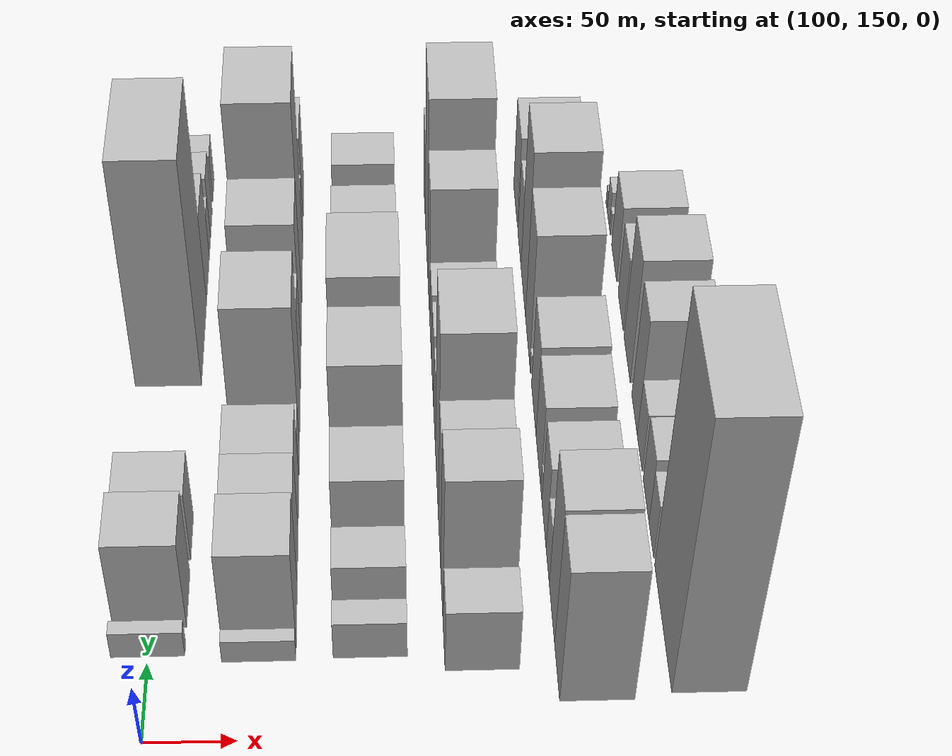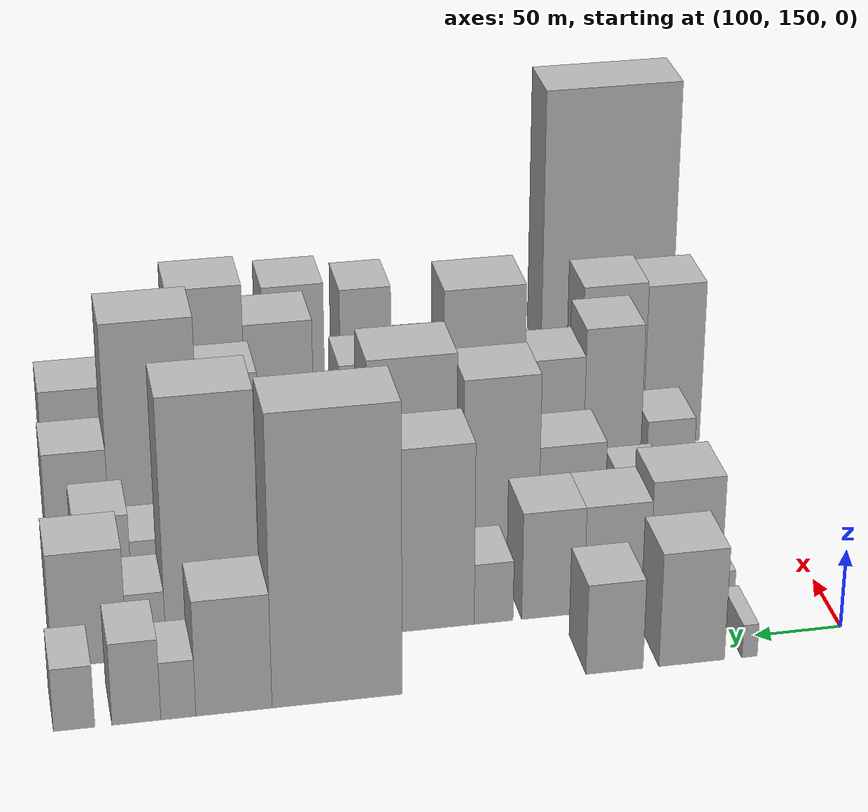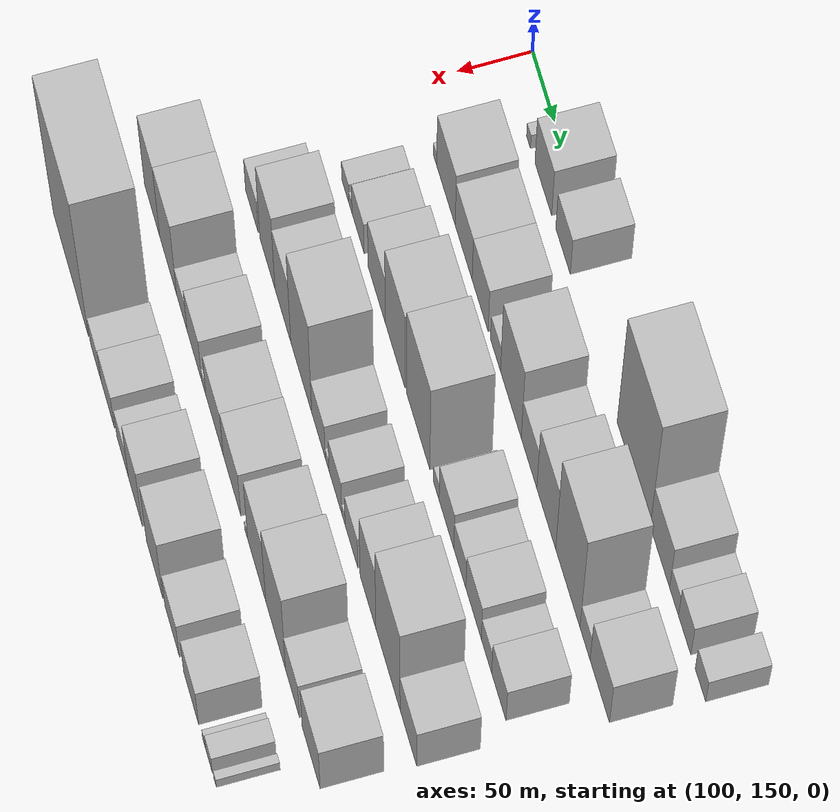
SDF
<sdf version="1.6">
 <world name="default">
  <model name="building_30">
   <static>1</static>
   <pose>100.0000 208.9905 0 0.000000 0.000000 0.000000</pose>
   <link name="link">
    <pose>0 0 10.50 0 0 0</pose>
    <collision name="collision"><geometry><box><size>40.0000 8.7514 21.0000</size></box></geometry></collision>
    <visual name="visual">
     <cast_shadows>0</cast_shadows>
     <geometry><box><size>40.0000 8.7514 21.0000</size></box></geometry>
     <material>
      <script>
       <uri>model://HANNAS_wall/materials/scripts</uri>
       <uri>model://HANNAS_wall/materials/textures</uri>
       <name>vrc/HANNAS_wall</name>
      </script>
     </material>
    </visual>
   </link>
  </model>
  <model name="building_31">
   <static>1</static>
   <pose>100.0000 241.9794 0 0.000000 0.000000 0.000000</pose>
   <link name="link">
    <pose>0 0 36.00 0 0 0</pose>
    <collision name="collision"><geometry><box><size>40.0000 37.2263 72.0000</size></box></geometry></collision>
    <visual name="visual">
     <cast_shadows>0</cast_shadows>
     <geometry><box><size>40.0000 37.2263 72.0000</size></box></geometry>
     <material>
      <script>
       <uri>model://HANNAS_wall/materials/scripts</uri>
       <uri>model://HANNAS_wall/materials/textures</uri>
       <name>vrc/HANNAS_wall</name>
      </script>
     </material>
    </visual>
   </link>
  </model>
  <model name="building_32">
   <static>1</static>
   <pose>100.0000 285.6427 0 0.000000 0.000000 0.000000</pose>
   <link name="link">
    <pose>0 0 28.50 0 0 0</pose>
    <collision name="collision"><geometry><box><size>40.0000 32.1003 57.0000</size></box></geometry></collision>
    <visual name="visual">
     <cast_shadows>0</cast_shadows>
     <geometry><box><size>40.0000 32.1003 57.0000</size></box></geometry>
     <material>
      <script>
       <uri>model://HANNAS_wall/materials/scripts</uri>
       <uri>model://HANNAS_wall/materials/textures</uri>
       <name>vrc/HANNAS_wall</name>
      </script>
     </material>
    </visual>
   </link>
  </model>
  <model name="building_33">
   <static>1</static>
   <pose>100.0000 439.0972 0 0.000000 0.000000 0.000000</pose>
   <link name="link">
    <pose>0 0 90.00 0 0 0</pose>
    <collision name="collision"><geometry><box><size>40.0000 70.9362 180.0000</size></box></geometry></collision>
    <visual name="visual">
     <cast_shadows>0</cast_shadows>
     <geometry><box><size>40.0000 70.9362 180.0000</size></box></geometry>
     <material>
      <script>
       <uri>model://HANNAS_wall/materials/scripts</uri>
       <uri>model://HANNAS_wall/materials/textures</uri>
       <name>vrc/HANNAS_wall</name>
      </script>
     </material>
    </visual>
   </link>
  </model>
  <model name="building_34">
   <static>1</static>
   <pose>100.0000 495.0541 0 0.000000 0.000000 0.000000</pose>
   <link name="link">
    <pose>0 0 36.00 0 0 0</pose>
    <collision name="collision"><geometry><box><size>40.0000 40.9777 72.0000</size></box></geometry></collision>
    <visual name="visual">
     <cast_shadows>0</cast_shadows>
     <geometry><box><size>40.0000 40.9777 72.0000</size></box></geometry>
     <material>
      <script>
       <uri>model://HANNAS_wall/materials/scripts</uri>
       <uri>model://HANNAS_wall/materials/textures</uri>
       <name>vrc/HANNAS_wall</name>
      </script>
     </material>
    </visual>
   </link>
  </model>
  <model name="building_35">
   <static>1</static>
   <pose>100.0000 524.9111 0 0.000000 0.000000 0.000000</pose>
   <link name="link">
    <pose>0 0 18.00 0 0 0</pose>
    <collision name="collision"><geometry><box><size>40.0000 18.7362 36.0000</size></box></geometry></collision>
    <visual name="visual">
     <cast_shadows>0</cast_shadows>
     <geometry><box><size>40.0000 18.7362 36.0000</size></box></geometry>
     <material>
      <script>
       <uri>model://HANNAS_wall/materials/scripts</uri>
       <uri>model://HANNAS_wall/materials/textures</uri>
       <name>vrc/HANNAS_wall</name>
      </script>
     </material>
    </visual>
   </link>
  </model>
  <model name="building_36">
   <static>1</static>
   <pose>100.0000 547.2872 0 0.000000 0.000000 0.000000</pose>
   <link name="link">
    <pose>0 0 25.50 0 0 0</pose>
    <collision name="collision"><geometry><box><size>40.0000 26.0160 51.0000</size></box></geometry></collision>
    <visual name="visual">
     <cast_shadows>0</cast_shadows>
     <geometry><box><size>40.0000 26.0160 51.0000</size></box></geometry>
     <material>
      <script>
       <uri>model://HANNAS_wall/materials/scripts</uri>
       <uri>model://HANNAS_wall/materials/textures</uri>
       <name>vrc/HANNAS_wall</name>
      </script>
     </material>
    </visual>
   </link>
  </model>
  <model name="building_37">
   <static>1</static>
   <pose>100.0000 580.2507 0 0.000000 0.000000 0.000000</pose>
   <link name="link">
    <pose>0 0 19.50 0 0 0</pose>
    <collision name="collision"><geometry><box><size>40.0000 21.9110 39.0000</size></box></geometry></collision>
    <visual name="visual">
     <cast_shadows>0</cast_shadows>
     <geometry><box><size>40.0000 21.9110 39.0000</size></box></geometry>
     <material>
      <script>
       <uri>model://HANNAS_wall/materials/scripts</uri>
       <uri>model://HANNAS_wall/materials/textures</uri>
       <name>vrc/HANNAS_wall</name>
      </script>
     </material>
    </visual>
   </link>
  </model>
  <model name="building_84">
   <static>1</static>
   <pose>160.0000 204.1823 0 0.000000 0.000000 0.000000</pose>
   <link name="link">
    <pose>0 0 9.00 0 0 0</pose>
    <collision name="collision"><geometry><box><size>40.0000 8.3804 18.0000</size></box></geometry></collision>
    <visual name="visual">
     <cast_shadows>0</cast_shadows>
     <geometry><box><size>40.0000 8.3804 18.0000</size></box></geometry>
     <material>
      <script>
       <uri>model://HANNAS_wall/materials/scripts</uri>
       <uri>model://HANNAS_wall/materials/textures</uri>
       <name>vrc/HANNAS_wall</name>
      </script>
     </material>
    </visual>
   </link>
  </model>
  <model name="building_85">
   <static>1</static>
   <pose>160.0000 229.3633 0 0.000000 0.000000 0.000000</pose>
   <link name="link">
    <pose>0 0 40.50 0 0 0</pose>
    <collision name="collision"><geometry><box><size>40.0000 41.9816 81.0000</size></box></geometry></collision>
    <visual name="visual">
     <cast_shadows>0</cast_shadows>
     <geometry><box><size>40.0000 41.9816 81.0000</size></box></geometry>
     <material>
      <script>
       <uri>model://HANNAS_wall/materials/scripts</uri>
       <uri>model://HANNAS_wall/materials/textures</uri>
       <name>vrc/HANNAS_wall</name>
      </script>
     </material>
    </visual>
   </link>
  </model>
  <model name="building_86">
   <static>1</static>
   <pose>160.0000 269.3965 0 0.000000 0.000000 0.000000</pose>
   <link name="link">
    <pose>0 0 34.50 0 0 0</pose>
    <collision name="collision"><geometry><box><size>40.0000 38.0850 69.0000</size></box></geometry></collision>
    <visual name="visual">
     <cast_shadows>0</cast_shadows>
     <geometry><box><size>40.0000 38.0850 69.0000</size></box></geometry>
     <material>
      <script>
       <uri>model://HANNAS_wall/materials/scripts</uri>
       <uri>model://HANNAS_wall/materials/textures</uri>
       <name>vrc/HANNAS_wall</name>
      </script>
     </material>
    </visual>
   </link>
  </model>
  <model name="building_87">
   <static>1</static>
   <pose>160.0000 306.3958 0 0.000000 0.000000 0.000000</pose>
   <link name="link">
    <pose>0 0 34.50 0 0 0</pose>
    <collision name="collision"><geometry><box><size>40.0000 35.9135 69.0000</size></box></geometry></collision>
    <visual name="visual">
     <cast_shadows>0</cast_shadows>
     <geometry><box><size>40.0000 35.9135 69.0000</size></box></geometry>
     <material>
      <script>
       <uri>model://HANNAS_wall/materials/scripts</uri>
       <uri>model://HANNAS_wall/materials/textures</uri>
       <name>vrc/HANNAS_wall</name>
      </script>
     </material>
    </visual>
   </link>
  </model>
  <model name="building_88">
   <static>1</static>
   <pose>160.0000 340.5164 0 0.000000 0.000000 0.000000</pose>
   <link name="link">
    <pose>0 0 19.50 0 0 0</pose>
    <collision name="collision"><geometry><box><size>40.0000 22.3277 39.0000</size></box></geometry></collision>
    <visual name="visual">
     <cast_shadows>0</cast_shadows>
     <geometry><box><size>40.0000 22.3277 39.0000</size></box></geometry>
     <material>
      <script>
       <uri>model://HANNAS_wall/materials/scripts</uri>
       <uri>model://HANNAS_wall/materials/textures</uri>
       <name>vrc/HANNAS_wall</name>
      </script>
     </material>
    </visual>
   </link>
  </model>
  <model name="building_89">
   <static>1</static>
   <pose>160.0000 374.5953 0 0.000000 0.000000 0.000000</pose>
   <link name="link">
    <pose>0 0 58.50 0 0 0</pose>
    <collision name="collision"><geometry><box><size>40.0000 45.8302 117.0000</size></box></geometry></collision>
    <visual name="visual">
     <cast_shadows>0</cast_shadows>
     <geometry><box><size>40.0000 45.8302 117.0000</size></box></geometry>
     <material>
      <script>
       <uri>model://HANNAS_wall/materials/scripts</uri>
       <uri>model://HANNAS_wall/materials/textures</uri>
       <name>vrc/HANNAS_wall</name>
      </script>
     </material>
    </visual>
   </link>
  </model>
  <model name="building_90">
   <static>1</static>
   <pose>160.0000 414.5548 0 0.000000 0.000000 0.000000</pose>
   <link name="link">
    <pose>0 0 33.00 0 0 0</pose>
    <collision name="collision"><geometry><box><size>40.0000 34.0886 66.0000</size></box></geometry></collision>
    <visual name="visual">
     <cast_shadows>0</cast_shadows>
     <geometry><box><size>40.0000 34.0886 66.0000</size></box></geometry>
     <material>
      <script>
       <uri>model://HANNAS_wall/materials/scripts</uri>
       <uri>model://HANNAS_wall/materials/textures</uri>
       <name>vrc/HANNAS_wall</name>
      </script>
     </material>
    </visual>
   </link>
  </model>
  <model name="building_91">
   <static>1</static>
   <pose>160.0000 452.0418 0 0.000000 0.000000 0.000000</pose>
   <link name="link">
    <pose>0 0 52.50 0 0 0</pose>
    <collision name="collision"><geometry><box><size>40.0000 40.8854 105.0000</size></box></geometry></collision>
    <visual name="visual">
     <cast_shadows>0</cast_shadows>
     <geometry><box><size>40.0000 40.8854 105.0000</size></box></geometry>
     <material>
      <script>
       <uri>model://HANNAS_wall/materials/scripts</uri>
       <uri>model://HANNAS_wall/materials/textures</uri>
       <name>vrc/HANNAS_wall</name>
      </script>
     </material>
    </visual>
   </link>
  </model>
  <model name="building_92">
   <static>1</static>
   <pose>160.0000 498.7131 0 0.000000 0.000000 0.000000</pose>
   <link name="link">
    <pose>0 0 81.00 0 0 0</pose>
    <collision name="collision"><geometry><box><size>40.0000 52.4572 162.0000</size></box></geometry></collision>
    <visual name="visual">
     <cast_shadows>0</cast_shadows>
     <geometry><box><size>40.0000 52.4572 162.0000</size></box></geometry>
     <material>
      <script>
       <uri>model://HANNAS_wall/materials/scripts</uri>
       <uri>model://HANNAS_wall/materials/textures</uri>
       <name>vrc/HANNAS_wall</name>
      </script>
     </material>
    </visual>
   </link>
  </model>
  <model name="building_93">
   <static>1</static>
   <pose>160.0000 535.7705 0 0.000000 0.000000 0.000000</pose>
   <link name="link">
    <pose>0 0 21.00 0 0 0</pose>
    <collision name="collision"><geometry><box><size>40.0000 21.6576 42.0000</size></box></geometry></collision>
    <visual name="visual">
     <cast_shadows>0</cast_shadows>
     <geometry><box><size>40.0000 21.6576 42.0000</size></box></geometry>
     <material>
      <script>
       <uri>model://HANNAS_wall/materials/scripts</uri>
       <uri>model://HANNAS_wall/materials/textures</uri>
       <name>vrc/HANNAS_wall</name>
      </script>
     </material>
    </visual>
   </link>
  </model>
  <model name="building_94">
   <static>1</static>
   <pose>160.0000 567.2086 0 0.000000 0.000000 0.000000</pose>
   <link name="link">
    <pose>0 0 36.00 0 0 0</pose>
    <collision name="collision"><geometry><box><size>40.0000 41.2186 72.0000</size></box></geometry></collision>
    <visual name="visual">
     <cast_shadows>0</cast_shadows>
     <geometry><box><size>40.0000 41.2186 72.0000</size></box></geometry>
     <material>
      <script>
       <uri>model://HANNAS_wall/materials/scripts</uri>
       <uri>model://HANNAS_wall/materials/textures</uri>
       <name>vrc/HANNAS_wall</name>
      </script>
     </material>
    </visual>
   </link>
  </model>
  <model name="building_141">
   <static>1</static>
   <pose>220.0000 209.3620 0 0.000000 0.000000 0.000000</pose>
   <link name="link">
    <pose>0 0 15.00 0 0 0</pose>
    <collision name="collision"><geometry><box><size>40.0000 16.4977 30.0000</size></box></geometry></collision>
    <visual name="visual">
     <cast_shadows>0</cast_shadows>
     <geometry><box><size>40.0000 16.4977 30.0000</size></box></geometry>
     <material>
      <script>
       <uri>model://HANNAS_wall/materials/scripts</uri>
       <uri>model://HANNAS_wall/materials/textures</uri>
       <name>vrc/HANNAS_wall</name>
      </script>
     </material>
    </visual>
   </link>
  </model>
  <model name="building_142">
   <static>1</static>
   <pose>220.0000 221.2172 0 0.000000 0.000000 0.000000</pose>
   <link name="link">
    <pose>0 0 9.00 0 0 0</pose>
    <collision name="collision"><geometry><box><size>40.0000 7.2127 18.0000</size></box></geometry></collision>
    <visual name="visual">
     <cast_shadows>0</cast_shadows>
     <geometry><box><size>40.0000 7.2127 18.0000</size></box></geometry>
     <material>
      <script>
       <uri>model://HANNAS_wall/materials/scripts</uri>
       <uri>model://HANNAS_wall/materials/textures</uri>
       <name>vrc/HANNAS_wall</name>
      </script>
     </material>
    </visual>
   </link>
  </model>
  <model name="building_143">
   <static>1</static>
   <pose>220.0000 238.9055 0 0.000000 0.000000 0.000000</pose>
   <link name="link">
    <pose>0 0 24.00 0 0 0</pose>
    <collision name="collision"><geometry><box><size>40.0000 28.1638 48.0000</size></box></geometry></collision>
    <visual name="visual">
     <cast_shadows>0</cast_shadows>
     <geometry><box><size>40.0000 28.1638 48.0000</size></box></geometry>
     <material>
      <script>
       <uri>model://HANNAS_wall/materials/scripts</uri>
       <uri>model://HANNAS_wall/materials/textures</uri>
       <name>vrc/HANNAS_wall</name>
      </script>
     </material>
    </visual>
   </link>
  </model>
  <model name="building_144">
   <static>1</static>
   <pose>220.0000 281.6469 0 0.000000 0.000000 0.000000</pose>
   <link name="link">
    <pose>0 0 37.50 0 0 0</pose>
    <collision name="collision"><geometry><box><size>40.0000 39.3190 75.0000</size></box></geometry></collision>
    <visual name="visual">
     <cast_shadows>0</cast_shadows>
     <geometry><box><size>40.0000 39.3190 75.0000</size></box></geometry>
     <material>
      <script>
       <uri>model://HANNAS_wall/materials/scripts</uri>
       <uri>model://HANNAS_wall/materials/textures</uri>
       <name>vrc/HANNAS_wall</name>
      </script>
     </material>
    </visual>
   </link>
  </model>
  <model name="building_145">
   <static>1</static>
   <pose>220.0000 323.6219 0 0.000000 0.000000 0.000000</pose>
   <link name="link">
    <pose>0 0 61.50 0 0 0</pose>
    <collision name="collision"><geometry><box><size>40.0000 44.6308 123.0000</size></box></geometry></collision>
    <visual name="visual">
     <cast_shadows>0</cast_shadows>
     <geometry><box><size>40.0000 44.6308 123.0000</size></box></geometry>
     <material>
      <script>
       <uri>model://HANNAS_wall/materials/scripts</uri>
       <uri>model://HANNAS_wall/materials/textures</uri>
       <name>vrc/HANNAS_wall</name>
      </script>
     </material>
    </visual>
   </link>
  </model>
  <model name="building_146">
   <static>1</static>
   <pose>220.0000 375.8786 0 0.000000 0.000000 0.000000</pose>
   <link name="link">
    <pose>0 0 70.50 0 0 0</pose>
    <collision name="collision"><geometry><box><size>40.0000 51.8826 141.0000</size></box></geometry></collision>
    <visual name="visual">
     <cast_shadows>0</cast_shadows>
     <geometry><box><size>40.0000 51.8826 141.0000</size></box></geometry>
     <material>
      <script>
       <uri>model://HANNAS_wall/materials/scripts</uri>
       <uri>model://HANNAS_wall/materials/textures</uri>
       <name>vrc/HANNAS_wall</name>
      </script>
     </material>
    </visual>
   </link>
  </model>
  <model name="building_147">
   <static>1</static>
   <pose>220.0000 416.1656 0 0.000000 0.000000 0.000000</pose>
   <link name="link">
    <pose>0 0 13.50 0 0 0</pose>
    <collision name="collision"><geometry><box><size>40.0000 12.6913 27.0000</size></box></geometry></collision>
    <visual name="visual">
     <cast_shadows>0</cast_shadows>
     <geometry><box><size>40.0000 12.6913 27.0000</size></box></geometry>
     <material>
      <script>
       <uri>model://HANNAS_wall/materials/scripts</uri>
       <uri>model://HANNAS_wall/materials/textures</uri>
       <name>vrc/HANNAS_wall</name>
      </script>
     </material>
    </visual>
   </link>
  </model>
  <model name="building_148">
   <static>1</static>
   <pose>220.0000 438.8307 0 0.000000 0.000000 0.000000</pose>
   <link name="link">
    <pose>0 0 31.50 0 0 0</pose>
    <collision name="collision"><geometry><box><size>40.0000 32.6391 63.0000</size></box></geometry></collision>
    <visual name="visual">
     <cast_shadows>0</cast_shadows>
     <geometry><box><size>40.0000 32.6391 63.0000</size></box></geometry>
     <material>
      <script>
       <uri>model://HANNAS_wall/materials/scripts</uri>
       <uri>model://HANNAS_wall/materials/textures</uri>
       <name>vrc/HANNAS_wall</name>
      </script>
     </material>
    </visual>
   </link>
  </model>
  <model name="building_149">
   <static>1</static>
   <pose>220.0000 468.4597 0 0.000000 0.000000 0.000000</pose>
   <link name="link">
    <pose>0 0 24.00 0 0 0</pose>
    <collision name="collision"><geometry><box><size>40.0000 26.6188 48.0000</size></box></geometry></collision>
    <visual name="visual">
     <cast_shadows>0</cast_shadows>
     <geometry><box><size>40.0000 26.6188 48.0000</size></box></geometry>
     <material>
      <script>
       <uri>model://HANNAS_wall/materials/scripts</uri>
       <uri>model://HANNAS_wall/materials/textures</uri>
       <name>vrc/HANNAS_wall</name>
      </script>
     </material>
    </visual>
   </link>
  </model>
  <model name="building_150">
   <static>1</static>
   <pose>220.0000 498.7210 0 0.000000 0.000000 0.000000</pose>
   <link name="link">
    <pose>0 0 30.00 0 0 0</pose>
    <collision name="collision"><geometry><box><size>40.0000 33.9039 60.0000</size></box></geometry></collision>
    <visual name="visual">
     <cast_shadows>0</cast_shadows>
     <geometry><box><size>40.0000 33.9039 60.0000</size></box></geometry>
     <material>
      <script>
       <uri>model://HANNAS_wall/materials/scripts</uri>
       <uri>model://HANNAS_wall/materials/textures</uri>
       <name>vrc/HANNAS_wall</name>
      </script>
     </material>
    </visual>
   </link>
  </model>
  <model name="building_151">
   <static>1</static>
   <pose>220.0000 526.9626 0 0.000000 0.000000 0.000000</pose>
   <link name="link">
    <pose>0 0 19.50 0 0 0</pose>
    <collision name="collision"><geometry><box><size>40.0000 22.5793 39.0000</size></box></geometry></collision>
    <visual name="visual">
     <cast_shadows>0</cast_shadows>
     <geometry><box><size>40.0000 22.5793 39.0000</size></box></geometry>
     <material>
      <script>
       <uri>model://HANNAS_wall/materials/scripts</uri>
       <uri>model://HANNAS_wall/materials/textures</uri>
       <name>vrc/HANNAS_wall</name>
      </script>
     </material>
    </visual>
   </link>
  </model>
  <model name="building_152">
   <static>1</static>
   <pose>220.0000 553.7831 0 0.000000 0.000000 0.000000</pose>
   <link name="link">
    <pose>0 0 28.50 0 0 0</pose>
    <collision name="collision"><geometry><box><size>40.0000 31.0616 57.0000</size></box></geometry></collision>
    <visual name="visual">
     <cast_shadows>0</cast_shadows>
     <geometry><box><size>40.0000 31.0616 57.0000</size></box></geometry>
     <material>
      <script>
       <uri>model://HANNAS_wall/materials/scripts</uri>
       <uri>model://HANNAS_wall/materials/textures</uri>
       <name>vrc/HANNAS_wall</name>
      </script>
     </material>
    </visual>
   </link>
  </model>
  <model name="building_194">
   <static>1</static>
   <pose>280.0000 206.1568 0 0.000000 0.000000 0.000000</pose>
   <link name="link">
    <pose>0 0 25.50 0 0 0</pose>
    <collision name="collision"><geometry><box><size>40.0000 29.7454 51.0000</size></box></geometry></collision>
    <visual name="visual">
     <cast_shadows>0</cast_shadows>
     <geometry><box><size>40.0000 29.7454 51.0000</size></box></geometry>
     <material>
      <script>
       <uri>model://HANNAS_wall/materials/scripts</uri>
       <uri>model://HANNAS_wall/materials/textures</uri>
       <name>vrc/HANNAS_wall</name>
      </script>
     </material>
    </visual>
   </link>
  </model>
  <model name="building_195">
   <static>1</static>
   <pose>280.0000 242.7639 0 0.000000 0.000000 0.000000</pose>
   <link name="link">
    <pose>0 0 58.50 0 0 0</pose>
    <collision name="collision"><geometry><box><size>40.0000 35.4689 117.0000</size></box></geometry></collision>
    <visual name="visual">
     <cast_shadows>0</cast_shadows>
     <geometry><box><size>40.0000 35.4689 117.0000</size></box></geometry>
     <material>
      <script>
       <uri>model://HANNAS_wall/materials/scripts</uri>
       <uri>model://HANNAS_wall/materials/textures</uri>
       <name>vrc/HANNAS_wall</name>
      </script>
     </material>
    </visual>
   </link>
  </model>
  <model name="building_196">
   <static>1</static>
   <pose>280.0000 278.8852 0 0.000000 0.000000 0.000000</pose>
   <link name="link">
    <pose>0 0 49.50 0 0 0</pose>
    <collision name="collision"><geometry><box><size>40.0000 36.7737 99.0000</size></box></geometry></collision>
    <visual name="visual">
     <cast_shadows>0</cast_shadows>
     <geometry><box><size>40.0000 36.7737 99.0000</size></box></geometry>
     <material>
      <script>
       <uri>model://HANNAS_wall/materials/scripts</uri>
       <uri>model://HANNAS_wall/materials/textures</uri>
       <name>vrc/HANNAS_wall</name>
      </script>
     </material>
    </visual>
   </link>
  </model>
  <model name="building_197">
   <static>1</static>
   <pose>280.0000 321.5544 0 0.000000 0.000000 0.000000</pose>
   <link name="link">
    <pose>0 0 75.00 0 0 0</pose>
    <collision name="collision"><geometry><box><size>40.0000 48.5648 150.0000</size></box></geometry></collision>
    <visual name="visual">
     <cast_shadows>0</cast_shadows>
     <geometry><box><size>40.0000 48.5648 150.0000</size></box></geometry>
     <material>
      <script>
       <uri>model://HANNAS_wall/materials/scripts</uri>
       <uri>model://HANNAS_wall/materials/textures</uri>
       <name>vrc/HANNAS_wall</name>
      </script>
     </material>
    </visual>
   </link>
  </model>
  <model name="building_198">
   <static>1</static>
   <pose>280.0000 361.4236 0 0.000000 0.000000 0.000000</pose>
   <link name="link">
    <pose>0 0 28.50 0 0 0</pose>
    <collision name="collision"><geometry><box><size>40.0000 31.1736 57.0000</size></box></geometry></collision>
    <visual name="visual">
     <cast_shadows>0</cast_shadows>
     <geometry><box><size>40.0000 31.1736 57.0000</size></box></geometry>
     <material>
      <script>
       <uri>model://HANNAS_wall/materials/scripts</uri>
       <uri>model://HANNAS_wall/materials/textures</uri>
       <name>vrc/HANNAS_wall</name>
      </script>
     </material>
    </visual>
   </link>
  </model>
  <model name="building_199">
   <static>1</static>
   <pose>280.0000 381.3711 0 0.000000 0.000000 0.000000</pose>
   <link name="link">
    <pose>0 0 9.00 0 0 0</pose>
    <collision name="collision"><geometry><box><size>40.0000 8.7213 18.0000</size></box></geometry></collision>
    <visual name="visual">
     <cast_shadows>0</cast_shadows>
     <geometry><box><size>40.0000 8.7213 18.0000</size></box></geometry>
     <material>
      <script>
       <uri>model://HANNAS_wall/materials/scripts</uri>
       <uri>model://HANNAS_wall/materials/textures</uri>
       <name>vrc/HANNAS_wall</name>
      </script>
     </material>
    </visual>
   </link>
  </model>
  <model name="building_200">
   <static>1</static>
   <pose>280.0000 400.1858 0 0.000000 0.000000 0.000000</pose>
   <link name="link">
    <pose>0 0 28.50 0 0 0</pose>
    <collision name="collision"><geometry><box><size>40.0000 28.9082 57.0000</size></box></geometry></collision>
    <visual name="visual">
     <cast_shadows>0</cast_shadows>
     <geometry><box><size>40.0000 28.9082 57.0000</size></box></geometry>
     <material>
      <script>
       <uri>model://HANNAS_wall/materials/scripts</uri>
       <uri>model://HANNAS_wall/materials/textures</uri>
       <name>vrc/HANNAS_wall</name>
      </script>
     </material>
    </visual>
   </link>
  </model>
  <model name="building_201">
   <static>1</static>
   <pose>280.0000 418.4963 0 0.000000 0.000000 0.000000</pose>
   <link name="link">
    <pose>0 0 9.00 0 0 0</pose>
    <collision name="collision"><geometry><box><size>40.0000 7.7127 18.0000</size></box></geometry></collision>
    <visual name="visual">
     <cast_shadows>0</cast_shadows>
     <geometry><box><size>40.0000 7.7127 18.0000</size></box></geometry>
     <material>
      <script>
       <uri>model://HANNAS_wall/materials/scripts</uri>
       <uri>model://HANNAS_wall/materials/textures</uri>
       <name>vrc/HANNAS_wall</name>
      </script>
     </material>
    </visual>
   </link>
  </model>
  <model name="building_202">
   <static>1</static>
   <pose>280.0000 436.6952 0 0.000000 0.000000 0.000000</pose>
   <link name="link">
    <pose>0 0 27.00 0 0 0</pose>
    <collision name="collision"><geometry><box><size>40.0000 28.6851 54.0000</size></box></geometry></collision>
    <visual name="visual">
     <cast_shadows>0</cast_shadows>
     <geometry><box><size>40.0000 28.6851 54.0000</size></box></geometry>
     <material>
      <script>
       <uri>model://HANNAS_wall/materials/scripts</uri>
       <uri>model://HANNAS_wall/materials/textures</uri>
       <name>vrc/HANNAS_wall</name>
      </script>
     </material>
    </visual>
   </link>
  </model>
  <model name="building_203">
   <static>1</static>
   <pose>280.0000 473.7985 0 0.000000 0.000000 0.000000</pose>
   <link name="link">
    <pose>0 0 54.00 0 0 0</pose>
    <collision name="collision"><geometry><box><size>40.0000 35.5214 108.0000</size></box></geometry></collision>
    <visual name="visual">
     <cast_shadows>0</cast_shadows>
     <geometry><box><size>40.0000 35.5214 108.0000</size></box></geometry>
     <material>
      <script>
       <uri>model://HANNAS_wall/materials/scripts</uri>
       <uri>model://HANNAS_wall/materials/textures</uri>
       <name>vrc/HANNAS_wall</name>
      </script>
     </material>
    </visual>
   </link>
  </model>
  <model name="building_204">
   <static>1</static>
   <pose>280.0000 518.4276 0 0.000000 0.000000 0.000000</pose>
   <link name="link">
    <pose>0 0 73.50 0 0 0</pose>
    <collision name="collision"><geometry><box><size>40.0000 53.7367 147.0000</size></box></geometry></collision>
    <visual name="visual">
     <cast_shadows>0</cast_shadows>
     <geometry><box><size>40.0000 53.7367 147.0000</size></box></geometry>
     <material>
      <script>
       <uri>model://HANNAS_wall/materials/scripts</uri>
       <uri>model://HANNAS_wall/materials/textures</uri>
       <name>vrc/HANNAS_wall</name>
      </script>
     </material>
    </visual>
   </link>
  </model>
  <model name="building_205">
   <static>1</static>
   <pose>280.0000 563.7916 0 0.000000 0.000000 0.000000</pose>
   <link name="link">
    <pose>0 0 33.00 0 0 0</pose>
    <collision name="collision"><geometry><box><size>40.0000 36.9914 66.0000</size></box></geometry></collision>
    <visual name="visual">
     <cast_shadows>0</cast_shadows>
     <geometry><box><size>40.0000 36.9914 66.0000</size></box></geometry>
     <material>
      <script>
       <uri>model://HANNAS_wall/materials/scripts</uri>
       <uri>model://HANNAS_wall/materials/textures</uri>
       <name>vrc/HANNAS_wall</name>
      </script>
     </material>
    </visual>
   </link>
  </model>
  <model name="building_249">
   <static>1</static>
   <pose>340.0000 188.6126 0 0.000000 0.000000 0.000000</pose>
   <link name="link">
    <pose>0 0 55.50 0 0 0</pose>
    <collision name="collision"><geometry><box><size>40.0000 36.7239 111.0000</size></box></geometry></collision>
    <visual name="visual">
     <cast_shadows>0</cast_shadows>
     <geometry><box><size>40.0000 36.7239 111.0000</size></box></geometry>
     <material>
      <script>
       <uri>model://HANNAS_wall/materials/scripts</uri>
       <uri>model://HANNAS_wall/materials/textures</uri>
       <name>vrc/HANNAS_wall</name>
      </script>
     </material>
    </visual>
   </link>
  </model>
  <model name="building_250">
   <static>1</static>
   <pose>340.0000 227.2166 0 0.000000 0.000000 0.000000</pose>
   <link name="link">
    <pose>0 0 57.00 0 0 0</pose>
    <collision name="collision"><geometry><box><size>40.0000 40.4842 114.0000</size></box></geometry></collision>
    <visual name="visual">
     <cast_shadows>0</cast_shadows>
     <geometry><box><size>40.0000 40.4842 114.0000</size></box></geometry>
     <material>
      <script>
       <uri>model://HANNAS_wall/materials/scripts</uri>
       <uri>model://HANNAS_wall/materials/textures</uri>
       <name>vrc/HANNAS_wall</name>
      </script>
     </material>
    </visual>
   </link>
  </model>
  <model name="building_251">
   <static>1</static>
   <pose>340.0000 259.9228 0 0.000000 0.000000 0.000000</pose>
   <link name="link">
    <pose>0 0 22.50 0 0 0</pose>
    <collision name="collision"><geometry><box><size>40.0000 24.9281 45.0000</size></box></geometry></collision>
    <visual name="visual">
     <cast_shadows>0</cast_shadows>
     <geometry><box><size>40.0000 24.9281 45.0000</size></box></geometry>
     <material>
      <script>
       <uri>model://HANNAS_wall/materials/scripts</uri>
       <uri>model://HANNAS_wall/materials/textures</uri>
       <name>vrc/HANNAS_wall</name>
      </script>
     </material>
    </visual>
   </link>
  </model>
  <model name="building_252">
   <static>1</static>
   <pose>340.0000 289.8086 0 0.000000 0.000000 0.000000</pose>
   <link name="link">
    <pose>0 0 34.50 0 0 0</pose>
    <collision name="collision"><geometry><box><size>40.0000 34.8436 69.0000</size></box></geometry></collision>
    <visual name="visual">
     <cast_shadows>0</cast_shadows>
     <geometry><box><size>40.0000 34.8436 69.0000</size></box></geometry>
     <material>
      <script>
       <uri>model://HANNAS_wall/materials/scripts</uri>
       <uri>model://HANNAS_wall/materials/textures</uri>
       <name>vrc/HANNAS_wall</name>
      </script>
     </material>
    </visual>
   </link>
  </model>
  <model name="building_253">
   <static>1</static>
   <pose>340.0000 312.0776 0 0.000000 0.000000 0.000000</pose>
   <link name="link">
    <pose>0 0 10.50 0 0 0</pose>
    <collision name="collision"><geometry><box><size>40.0000 9.6943 21.0000</size></box></geometry></collision>
    <visual name="visual">
     <cast_shadows>0</cast_shadows>
     <geometry><box><size>40.0000 9.6943 21.0000</size></box></geometry>
     <material>
      <script>
       <uri>model://HANNAS_wall/materials/scripts</uri>
       <uri>model://HANNAS_wall/materials/textures</uri>
       <name>vrc/HANNAS_wall</name>
      </script>
     </material>
    </visual>
   </link>
  </model>
  <model name="building_254">
   <static>1</static>
   <pose>340.0000 337.2378 0 0.000000 0.000000 0.000000</pose>
   <link name="link">
    <pose>0 0 34.50 0 0 0</pose>
    <collision name="collision"><geometry><box><size>40.0000 40.6262 69.0000</size></box></geometry></collision>
    <visual name="visual">
     <cast_shadows>0</cast_shadows>
     <geometry><box><size>40.0000 40.6262 69.0000</size></box></geometry>
     <material>
      <script>
       <uri>model://HANNAS_wall/materials/scripts</uri>
       <uri>model://HANNAS_wall/materials/textures</uri>
       <name>vrc/HANNAS_wall</name>
      </script>
     </material>
    </visual>
   </link>
  </model>
  <model name="building_255">
   <static>1</static>
   <pose>340.0000 378.2071 0 0.000000 0.000000 0.000000</pose>
   <link name="link">
    <pose>0 0 37.50 0 0 0</pose>
    <collision name="collision"><geometry><box><size>40.0000 41.3124 75.0000</size></box></geometry></collision>
    <visual name="visual">
     <cast_shadows>0</cast_shadows>
     <geometry><box><size>40.0000 41.3124 75.0000</size></box></geometry>
     <material>
      <script>
       <uri>model://HANNAS_wall/materials/scripts</uri>
       <uri>model://HANNAS_wall/materials/textures</uri>
       <name>vrc/HANNAS_wall</name>
      </script>
     </material>
    </visual>
   </link>
  </model>
  <model name="building_256">
   <static>1</static>
   <pose>340.0000 411.3108 0 0.000000 0.000000 0.000000</pose>
   <link name="link">
    <pose>0 0 7.50 0 0 0</pose>
    <collision name="collision"><geometry><box><size>40.0000 6.8949 15.0000</size></box></geometry></collision>
    <visual name="visual">
     <cast_shadows>0</cast_shadows>
     <geometry><box><size>40.0000 6.8949 15.0000</size></box></geometry>
     <material>
      <script>
       <uri>model://HANNAS_wall/materials/scripts</uri>
       <uri>model://HANNAS_wall/materials/textures</uri>
       <name>vrc/HANNAS_wall</name>
      </script>
     </material>
    </visual>
   </link>
  </model>
  <model name="building_257">
   <static>1</static>
   <pose>340.0000 435.5903 0 0.000000 0.000000 0.000000</pose>
   <link name="link">
    <pose>0 0 54.00 0 0 0</pose>
    <collision name="collision"><geometry><box><size>40.0000 41.6641 108.0000</size></box></geometry></collision>
    <visual name="visual">
     <cast_shadows>0</cast_shadows>
     <geometry><box><size>40.0000 41.6641 108.0000</size></box></geometry>
     <material>
      <script>
       <uri>model://HANNAS_wall/materials/scripts</uri>
       <uri>model://HANNAS_wall/materials/textures</uri>
       <name>vrc/HANNAS_wall</name>
      </script>
     </material>
    </visual>
   </link>
  </model>
  <model name="building_258">
   <static>1</static>
   <pose>340.0000 478.9273 0 0.000000 0.000000 0.000000</pose>
   <link name="link">
    <pose>0 0 67.50 0 0 0</pose>
    <collision name="collision"><geometry><box><size>40.0000 45.0100 135.0000</size></box></geometry></collision>
    <visual name="visual">
     <cast_shadows>0</cast_shadows>
     <geometry><box><size>40.0000 45.0100 135.0000</size></box></geometry>
     <material>
      <script>
       <uri>model://HANNAS_wall/materials/scripts</uri>
       <uri>model://HANNAS_wall/materials/textures</uri>
       <name>vrc/HANNAS_wall</name>
      </script>
     </material>
    </visual>
   </link>
  </model>
  <model name="building_259">
   <static>1</static>
   <pose>340.0000 517.2778 0 0.000000 0.000000 0.000000</pose>
   <link name="link">
    <pose>0 0 31.50 0 0 0</pose>
    <collision name="collision"><geometry><box><size>40.0000 31.6910 63.0000</size></box></geometry></collision>
    <visual name="visual">
     <cast_shadows>0</cast_shadows>
     <geometry><box><size>40.0000 31.6910 63.0000</size></box></geometry>
     <material>
      <script>
       <uri>model://HANNAS_wall/materials/scripts</uri>
       <uri>model://HANNAS_wall/materials/textures</uri>
       <name>vrc/HANNAS_wall</name>
      </script>
     </material>
    </visual>
   </link>
  </model>
  <model name="building_260">
   <static>1</static>
   <pose>340.0000 559.4416 0 0.000000 0.000000 0.000000</pose>
   <link name="link">
    <pose>0 0 37.50 0 0 0</pose>
    <collision name="collision"><geometry><box><size>40.0000 40.6365 75.0000</size></box></geometry></collision>
    <visual name="visual">
     <cast_shadows>0</cast_shadows>
     <geometry><box><size>40.0000 40.6365 75.0000</size></box></geometry>
     <material>
      <script>
       <uri>model://HANNAS_wall/materials/scripts</uri>
       <uri>model://HANNAS_wall/materials/textures</uri>
       <name>vrc/HANNAS_wall</name>
      </script>
     </material>
    </visual>
   </link>
  </model>
  <model name="building_306">
   <static>1</static>
   <pose>400.0000 216.6478 0 0.000000 0.000000 0.000000</pose>
   <link name="link">
    <pose>0 0 109.50 0 0 0</pose>
    <collision name="collision"><geometry><box><size>40.0000 85.5248 219.0000</size></box></geometry></collision>
    <visual name="visual">
     <cast_shadows>0</cast_shadows>
     <geometry><box><size>40.0000 85.5248 219.0000</size></box></geometry>
     <material>
      <script>
       <uri>model://HANNAS_wall/materials/scripts</uri>
       <uri>model://HANNAS_wall/materials/textures</uri>
       <name>vrc/HANNAS_wall</name>
      </script>
     </material>
    </visual>
   </link>
  </model>
  <model name="building_307">
   <static>1</static>
   <pose>400.0000 277.2289 0 0.000000 0.000000 0.000000</pose>
   <link name="link">
    <pose>0 0 22.50 0 0 0</pose>
    <collision name="collision"><geometry><box><size>40.0000 25.6376 45.0000</size></box></geometry></collision>
    <visual name="visual">
     <cast_shadows>0</cast_shadows>
     <geometry><box><size>40.0000 25.6376 45.0000</size></box></geometry>
     <material>
      <script>
       <uri>model://HANNAS_wall/materials/scripts</uri>
       <uri>model://HANNAS_wall/materials/textures</uri>
       <name>vrc/HANNAS_wall</name>
      </script>
     </material>
    </visual>
   </link>
  </model>
  <model name="building_308">
   <static>1</static>
   <pose>400.0000 306.1506 0 0.000000 0.000000 0.000000</pose>
   <link name="link">
    <pose>0 0 27.00 0 0 0</pose>
    <collision name="collision"><geometry><box><size>40.0000 32.2058 54.0000</size></box></geometry></collision>
    <visual name="visual">
     <cast_shadows>0</cast_shadows>
     <geometry><box><size>40.0000 32.2058 54.0000</size></box></geometry>
     <material>
      <script>
       <uri>model://HANNAS_wall/materials/scripts</uri>
       <uri>model://HANNAS_wall/materials/textures</uri>
       <name>vrc/HANNAS_wall</name>
      </script>
     </material>
    </visual>
   </link>
  </model>
  <model name="building_309">
   <static>1</static>
   <pose>400.0000 342.2818 0 0.000000 0.000000 0.000000</pose>
   <link name="link">
    <pose>0 0 24.00 0 0 0</pose>
    <collision name="collision"><geometry><box><size>40.0000 28.0565 48.0000</size></box></geometry></collision>
    <visual name="visual">
     <cast_shadows>0</cast_shadows>
     <geometry><box><size>40.0000 28.0565 48.0000</size></box></geometry>
     <material>
      <script>
       <uri>model://HANNAS_wall/materials/scripts</uri>
       <uri>model://HANNAS_wall/materials/textures</uri>
       <name>vrc/HANNAS_wall</name>
      </script>
     </material>
    </visual>
   </link>
  </model>
  <model name="building_310">
   <static>1</static>
   <pose>400.0000 372.5120 0 0.000000 0.000000 0.000000</pose>
   <link name="link">
    <pose>0 0 48.00 0 0 0</pose>
    <collision name="collision"><geometry><box><size>40.0000 32.4040 96.0000</size></box></geometry></collision>
    <visual name="visual">
     <cast_shadows>0</cast_shadows>
     <geometry><box><size>40.0000 32.4040 96.0000</size></box></geometry>
     <material>
      <script>
       <uri>model://HANNAS_wall/materials/scripts</uri>
       <uri>model://HANNAS_wall/materials/textures</uri>
       <name>vrc/HANNAS_wall</name>
      </script>
     </material>
    </visual>
   </link>
  </model>
  <model name="building_311">
   <static>1</static>
   <pose>400.0000 418.0719 0 0.000000 0.000000 0.000000</pose>
   <link name="link">
    <pose>0 0 51.00 0 0 0</pose>
    <collision name="collision"><geometry><box><size>40.0000 38.7157 102.0000</size></box></geometry></collision>
    <visual name="visual">
     <cast_shadows>0</cast_shadows>
     <geometry><box><size>40.0000 38.7157 102.0000</size></box></geometry>
     <material>
      <script>
       <uri>model://HANNAS_wall/materials/scripts</uri>
       <uri>model://HANNAS_wall/materials/textures</uri>
       <name>vrc/HANNAS_wall</name>
      </script>
     </material>
    </visual>
   </link>
  </model>
  <model name="building_312">
   <static>1</static>
   <pose>400.0000 459.2894 0 0.000000 0.000000 0.000000</pose>
   <link name="link">
    <pose>0 0 30.00 0 0 0</pose>
    <collision name="collision"><geometry><box><size>40.0000 33.7192 60.0000</size></box></geometry></collision>
    <visual name="visual">
     <cast_shadows>0</cast_shadows>
     <geometry><box><size>40.0000 33.7192 60.0000</size></box></geometry>
     <material>
      <script>
       <uri>model://HANNAS_wall/materials/scripts</uri>
       <uri>model://HANNAS_wall/materials/textures</uri>
       <name>vrc/HANNAS_wall</name>
      </script>
     </material>
    </visual>
   </link>
  </model>
  <model name="building_313">
   <static>1</static>
   <pose>400.0000 503.4404 0 0.000000 0.000000 0.000000</pose>
   <link name="link">
    <pose>0 0 31.50 0 0 0</pose>
    <collision name="collision"><geometry><box><size>40.0000 34.5829 63.0000</size></box></geometry></collision>
    <visual name="visual">
     <cast_shadows>0</cast_shadows>
     <geometry><box><size>40.0000 34.5829 63.0000</size></box></geometry>
     <material>
      <script>
       <uri>model://HANNAS_wall/materials/scripts</uri>
       <uri>model://HANNAS_wall/materials/textures</uri>
       <name>vrc/HANNAS_wall</name>
      </script>
     </material>
    </visual>
   </link>
  </model>
  <model name="building_314">
   <static>1</static>
   <pose>400.0000 533.4105 0 0.000000 0.000000 0.000000</pose>
   <link name="link">
    <pose>0 0 9.00 0 0 0</pose>
    <collision name="collision"><geometry><box><size>40.0000 7.3574 18.0000</size></box></geometry></collision>
    <visual name="visual">
     <cast_shadows>0</cast_shadows>
     <geometry><box><size>40.0000 7.3574 18.0000</size></box></geometry>
     <material>
      <script>
       <uri>model://HANNAS_wall/materials/scripts</uri>
       <uri>model://HANNAS_wall/materials/textures</uri>
       <name>vrc/HANNAS_wall</name>
      </script>
     </material>
    </visual>
   </link>
  </model>
  <model name="building_315">
   <static>1</static>
   <pose>400.0000 544.8242 0 0.000000 0.000000 0.000000</pose>
   <link name="link">
    <pose>0 0 15.00 0 0 0</pose>
    <collision name="collision"><geometry><box><size>40.0000 15.4701 30.0000</size></box></geometry></collision>
    <visual name="visual">
     <cast_shadows>0</cast_shadows>
     <geometry><box><size>40.0000 15.4701 30.0000</size></box></geometry>
     <material>
      <script>
       <uri>model://HANNAS_wall/materials/scripts</uri>
       <uri>model://HANNAS_wall/materials/textures</uri>
       <name>vrc/HANNAS_wall</name>
      </script>
     </material>
    </visual>
   </link>
  </model>
  <model name="building_316">
   <static>1</static>
   <pose>400.0000 558.6317 0 0.000000 0.000000 0.000000</pose>
   <link name="link">
    <pose>0 0 7.50 0 0 0</pose>
    <collision name="collision"><geometry><box><size>40.0000 6.1450 15.0000</size></box></geometry></collision>
    <visual name="visual">
     <cast_shadows>0</cast_shadows>
     <geometry><box><size>40.0000 6.1450 15.0000</size></box></geometry>
     <material>
      <script>
       <uri>model://HANNAS_wall/materials/scripts</uri>
       <uri>model://HANNAS_wall/materials/textures</uri>
       <name>vrc/HANNAS_wall</name>
      </script>
     </material>
    </visual>
   </link>
  </model>
 </world>
</sdf>
